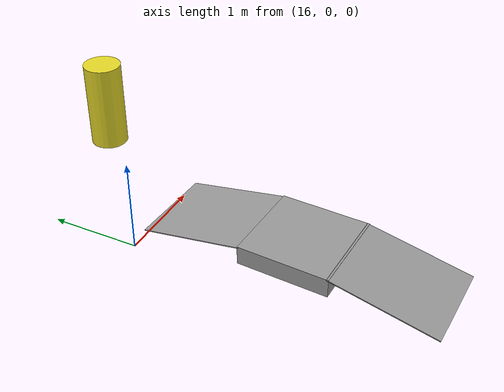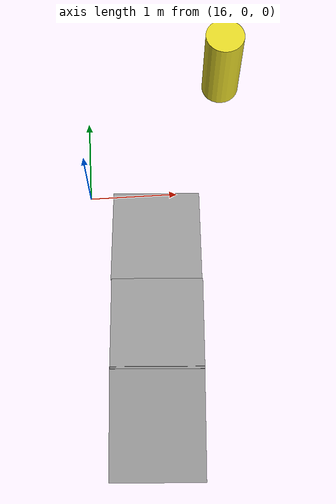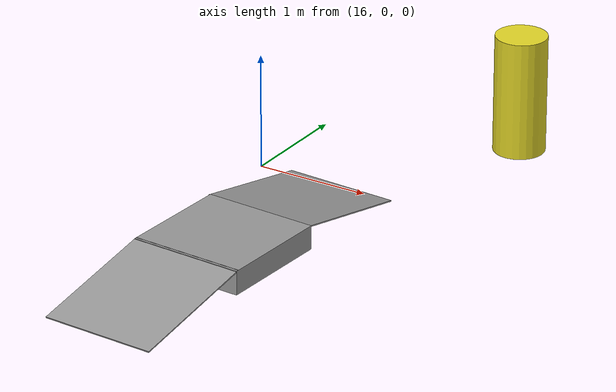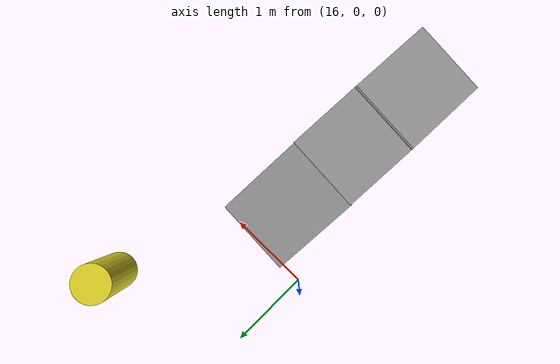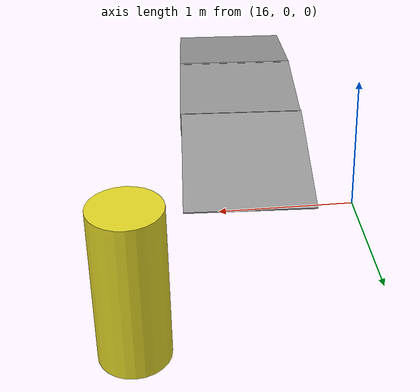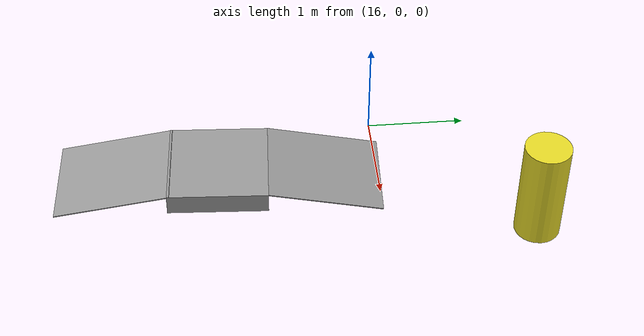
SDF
<sdf version="1.7">
 <world name="IGVC AutoNav">
  <model name="barrel_39">
   <link name="link">
    <inertial>
     <mass>1</mass>
     <inertia><ixx>0.145833</ixx><ixy>0</ixy><ixz>0</ixz><iyy>0.145833</iyy><iyz>0</iyz><izz>0.125</izz></inertia>
    </inertial>
    <visual name="visual">
     <geometry><cylinder><radius>0.222916</radius><length>1.03567</length></cylinder></geometry>
     <material>
      <script><name>Gazebo/Yellow</name><uri>file://media/materials/scripts/gazebo.material</uri></script>
      <shader type="pixel"/>
     </material>
    </visual>
    <collision name="collision">
     <geometry><cylinder><radius>0.222916</radius><length>1.03567</length></cylinder></geometry>
     <surface>
      <friction>
       <ode><mu>1</mu><mu2>1</mu2><fdir1>0 0 0</fdir1><slip1>0</slip1><slip2>0</slip2></ode>
       <torsional>
        <coefficient>1</coefficient>
        <patch_radius>0</patch_radius>
        <surface_radius>0</surface_radius>
        <use_patch_radius>1</use_patch_radius>
        <ode><slip>0</slip></ode>
       </torsional>
      </friction>
      <bounce><restitution_coefficient>0</restitution_coefficient><threshold>1e+06</threshold></bounce>
      <contact>
       <collide_without_contact>0</collide_without_contact>
       <collide_without_contact_bitmask>1</collide_without_contact_bitmask>
       <collide_bitmask>1</collide_bitmask>
       <ode>
        <soft_cfm>0</soft_cfm>
        <soft_erp>0.2</soft_erp>
        <kp>1e+13</kp>
        <kd>1</kd>
        <max_vel>0.01</max_vel>
        <min_depth>0</min_depth>
       </ode>
       <bullet>
        <split_impulse>1</split_impulse>
        <split_impulse_penetration_threshold>-0.01</split_impulse_penetration_threshold>
        <soft_cfm>0</soft_cfm>
        <soft_erp>0.2</soft_erp>
        <kp>1e+13</kp>
        <kd>1</kd>
       </bullet>
      </contact>
     </surface>
    </collision>
   </link>
   <static>0</static>
   <pose>17.6329 1.45197 0.517827 1e-06 -1e-06 0.000302</pose>
  </model>
  <model name="RAMP2">
   <link name="link_0">
    <inertial>
     <mass>100</mass>
     <inertia><ixx>8.69346</ixx><ixy>0</ixy><ixz>0</ixz><iyy>8.69346</iyy><iyz>0</iyz><izz>16.6667</izz></inertia>
    </inertial>
    <pose>0.02243 -0.004719 0.008392 0 0 -0.048312</pose>
    <visual name="visual">
     <geometry><box><size>1 1 0.207883</size></box></geometry>
     <material>
      <lighting>1</lighting>
      <script><uri>file://media/materials/scripts/gazebo.material</uri><name>Gazebo/Grey</name></script>
      <shader type="pixel"><normal_map>__default__</normal_map></shader>
      <emissive>0 0 0 1</emissive>
      <ambient>0.3 0.3 0.3 1</ambient>
      <diffuse>0.7 0.7 0.7 1</diffuse>
      <specular>0.01 0.01 0.01 1</specular>
     </material>
    </visual>
    <collision name="collision">
     <geometry><box><size>1 1 0.207883</size></box></geometry>
     <surface>
      <friction>
       <ode><mu>1</mu><mu2>1</mu2><fdir1>0 0 0</fdir1><slip1>0</slip1><slip2>0</slip2></ode>
       <torsional>
        <coefficient>1</coefficient>
        <patch_radius>0</patch_radius>
        <surface_radius>0</surface_radius>
        <use_patch_radius>1</use_patch_radius>
        <ode><slip>0</slip></ode>
       </torsional>
      </friction>
      <bounce><restitution_coefficient>0</restitution_coefficient><threshold>1e+06</threshold></bounce>
      <contact>
       <collide_without_contact>0</collide_without_contact>
       <collide_without_contact_bitmask>1</collide_without_contact_bitmask>
       <collide_bitmask>1</collide_bitmask>
       <ode>
        <soft_cfm>0</soft_cfm>
        <soft_erp>0.2</soft_erp>
        <kp>1e+13</kp>
        <kd>1</kd>
        <max_vel>0.01</max_vel>
        <min_depth>0</min_depth>
       </ode>
       <bullet>
        <split_impulse>1</split_impulse>
        <split_impulse_penetration_threshold>-0.01</split_impulse_penetration_threshold>
        <soft_cfm>0</soft_cfm>
        <soft_erp>0.2</soft_erp>
        <kp>1e+13</kp>
        <kd>1</kd>
       </bullet>
      </contact>
     </surface>
    </collision>
   </link>
   <link name="link_1">
    <inertial>
     <mass>50</mass>
     <inertia><ixx>5.7245</ixx><ixy>0</ixy><ixz>0</ixz><iyy>4.16712</iyy><iyz>0</iyz><izz>9.89071</izz></inertia>
    </inertial>
    <pose>-0.028116 -1.05205 -0.004197 0.192792 -0 -0.046123</pose>
    <visual name="visual">
     <geometry><box><size>1 1.17208 0.010432</size></box></geometry>
     <material>
      <lighting>1</lighting>
      <script><uri>file://media/materials/scripts/gazebo.material</uri><name>Gazebo/Grey</name></script>
      <shader type="pixel"><normal_map>__default__</normal_map></shader>
      <emissive>0 0 0 1</emissive>
     </material>
    </visual>
    <collision name="collision">
     <geometry><box><size>1 1.17208 0.010432</size></box></geometry>
     <surface>
      <friction>
       <ode><mu>1</mu><mu2>1</mu2><fdir1>0 0 0</fdir1><slip1>0</slip1><slip2>0</slip2></ode>
       <torsional>
        <coefficient>1</coefficient>
        <patch_radius>0</patch_radius>
        <surface_radius>0</surface_radius>
        <use_patch_radius>1</use_patch_radius>
        <ode><slip>0</slip></ode>
       </torsional>
      </friction>
      <bounce><restitution_coefficient>0</restitution_coefficient><threshold>1e+06</threshold></bounce>
      <contact>
       <collide_without_contact>0</collide_without_contact>
       <collide_without_contact_bitmask>1</collide_without_contact_bitmask>
       <collide_bitmask>1</collide_bitmask>
       <ode>
        <soft_cfm>0</soft_cfm>
        <soft_erp>0.2</soft_erp>
        <kp>1e+13</kp>
        <kd>1</kd>
        <max_vel>0.01</max_vel>
        <min_depth>0</min_depth>
       </ode>
       <bullet>
        <split_impulse>1</split_impulse>
        <split_impulse_penetration_threshold>-0.01</split_impulse_penetration_threshold>
        <soft_cfm>0</soft_cfm>
        <soft_erp>0.2</soft_erp>
        <kp>1e+13</kp>
        <kd>1</kd>
       </bullet>
      </contact>
     </surface>
    </collision>
   </link>
   <link name="link_1_clone">
    <inertial>
     <mass>50</mass>
     <inertia><ixx>5.7245</ixx><ixy>0</ixy><ixz>0</ixz><iyy>4.16712</iyy><iyz>0</iyz><izz>9.89071</izz></inertia>
    </inertial>
    <pose>0.064606 1.05405 -0.004196 -0.19048 -0 -0.046123</pose>
    <visual name="visual">
     <geometry><box><size>1 1.17208 0.010432</size></box></geometry>
     <material>
      <lighting>1</lighting>
      <script><uri>file://media/materials/scripts/gazebo.material</uri><name>Gazebo/Grey</name></script>
      <shader type="pixel"><normal_map>__default__</normal_map></shader>
      <emissive>0 0 0 1</emissive>
     </material>
    </visual>
    <collision name="collision">
     <geometry><box><size>1 1.17208 0.010432</size></box></geometry>
     <surface>
      <friction>
       <ode><mu>1</mu><mu2>1</mu2><fdir1>0 0 0</fdir1><slip1>0</slip1><slip2>0</slip2></ode>
       <torsional>
        <coefficient>1</coefficient>
        <patch_radius>0</patch_radius>
        <surface_radius>0</surface_radius>
        <use_patch_radius>1</use_patch_radius>
        <ode><slip>0</slip></ode>
       </torsional>
      </friction>
      <bounce><restitution_coefficient>0</restitution_coefficient><threshold>1e+06</threshold></bounce>
      <contact>
       <collide_without_contact>0</collide_without_contact>
       <collide_without_contact_bitmask>1</collide_without_contact_bitmask>
       <collide_bitmask>1</collide_bitmask>
       <ode>
        <soft_cfm>0</soft_cfm>
        <soft_erp>0.2</soft_erp>
        <kp>1e+13</kp>
        <kd>1</kd>
        <max_vel>0.01</max_vel>
        <min_depth>0</min_depth>
       </ode>
       <bullet>
        <split_impulse>1</split_impulse>
        <split_impulse_penetration_threshold>-0.01</split_impulse_penetration_threshold>
        <soft_cfm>0</soft_cfm>
        <soft_erp>0.2</soft_erp>
        <kp>1e+13</kp>
        <kd>1</kd>
       </bullet>
      </contact>
     </surface>
    </collision>
   </link>
   <joint name="link_0_JOINT_1" type="fixed">
    <parent>link_0</parent>
    <child>link_1</child>
    <physics>
     <ode><limit><cfm>0</cfm><erp>0.2</erp></limit><suspension><cfm>0</cfm><erp>0.2</erp></suspension></ode>
    </physics>
   </joint>
   <joint name="link_0_JOINT_2" type="fixed">
    <parent>link_0</parent>
    <child>link_1_clone</child>
    <physics>
     <ode><limit><cfm>0</cfm><erp>0.2</erp></limit><suspension><cfm>0</cfm><erp>0.2</erp></suspension></ode>
    </physics>
   </joint>
   <static>0</static>
   <pose>16.6632 -1.60413 0.120935 -0.000409 1.9e-05 -0.005977</pose>
  </model>
 </world>
</sdf>
